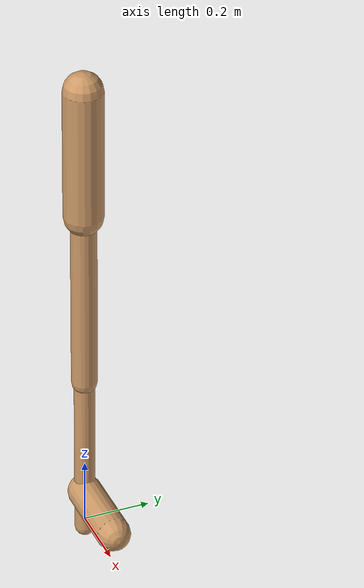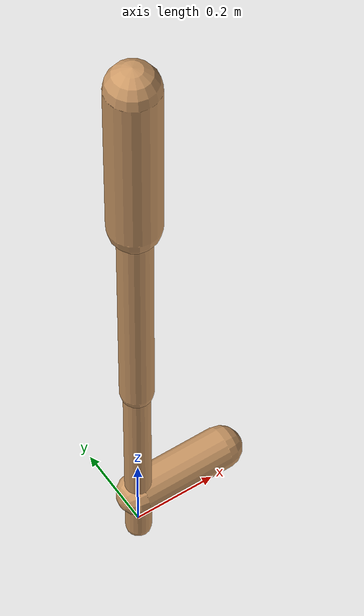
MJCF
<mujoco model="walker2d">
  <compiler angle="degree" coordinate="global" inertiafromgeom="true" />
  <default>
    <joint armature="0.01" damping=".1" limited="true" />
    <geom conaffinity="0" condim="3" contype="1" density="1000" friction="0.8 .1 .1" rgba="0.8 0.6 .4 1" />
  </default>
  <option integrator="RK4" timestep="0.002" />
  <worldbody>

    <body name="torso" pos="0 0 0.2314975344570052">
      <joint armature="0" axis="1 0 0" damping="0" limited="false" name="ignorex" pos="0 0 0" stiffness="0" type="slide" />
      <joint armature="0" axis="0 0 1" damping="0" limited="false" name="ignorez" pos="0 0 0" ref="1.25" stiffness="0" type="slide" />
      <joint armature="0" axis="0 1 0" damping="0" limited="false" name="ignorey" pos="0 0 0" stiffness="0" type="hinge" />
      <geom fromto="0 0 1.45 0 0 1.05" name="torso_geom" size="0.05867359505000861" type="capsule" />
      <body name="thigh">
        <joint axis="0 -1 0" name="thigh_joint" pos="0 0 1.05" range="-150 0" type="hinge" />
        <geom fromto="0.0 0.0 1.05 0.0 0.0 0.49034327315194487" name="thigh_geom" size="0.038097993159189686" type="capsule" />
        <body name="leg" pos="0.0 0.0 -0.10965672684805511">
          <joint axis="0 -1 0" name="leg_joint" pos="0 0 0.6" range="-150 0" type="hinge" />
          <geom fromto="0.0 0.0 0.6 0.0 0.0 -0.02184080760895009" name="leg_geom" size="0.030478394527351745" type="capsule" />
          <body name="foot" pos="0.0 0.0 -0.1218408076089501">
            <joint axis="0 -1 0" name="foot_joint" pos="0 0 0.1" range="-45 45" type="hinge" />
            <geom fromto="-0.0 0.0 0.10000000000000002 0.22311444899629496 0.0 0.10000000000000002" name="foot_geom" size="0.050831675081595896" type="capsule" />
          </body>
        </body>
      </body>

      <body name="thigh_left">
        <joint axis="0 -1 0" name="thigh_left_joint" pos="0 0 1.05" range="-150 0" type="hinge" />
        <geom fromto="0.0 0.0 1.05 0.0 0.0 0.49034327315194487" name="thigh_left_geom" rgba=".7 .3 .6 1" size="0.038097993159189686" type="capsule" />
        <body name="leg_left" pos="0.0 0.0 -0.10965672684805511">
          <joint axis="0 -1 0" name="leg_left_joint" pos="0 0 0.6" range="-150 0" type="hinge" />
          <geom fromto="0.0 0.0 0.6 0.0 0.0 -0.02184080760895009" name="leg_left_geom" rgba=".7 .3 .6 1" size="0.030478394527351745" type="capsule" />
          <body name="foot_left" pos="0.0 0.0 -0.1218408076089501">
            <joint axis="0 -1 0" name="foot_left_joint" pos="0 0 0.1" range="-45 45" type="hinge" />
            <geom fromto="-0.0 0.0 0.10000000000000002 0.22311444899629496 0.0 0.10000000000000002" name="foot_left_geom" rgba=".7 .3 .6 1" size="0.050831675081595896" type="capsule" />
          </body>
        </body>
      </body>
    </body>
  </worldbody>
  <actuator>

    <motor ctrllimited="true" ctrlrange="-1.0 1.0" gear="100" joint="thigh_joint" />
    <motor ctrllimited="true" ctrlrange="-1.0 1.0" gear="100" joint="leg_joint" />
    <motor ctrllimited="true" ctrlrange="-1.0 1.0" gear="100" joint="foot_joint" />
    <motor ctrllimited="true" ctrlrange="-1.0 1.0" gear="100" joint="thigh_left_joint" />
    <motor ctrllimited="true" ctrlrange="-1.0 1.0" gear="100" joint="leg_left_joint" />
    <motor ctrllimited="true" ctrlrange="-1.0 1.0" gear="100" joint="foot_left_joint" />

  </actuator>
</mujoco>
